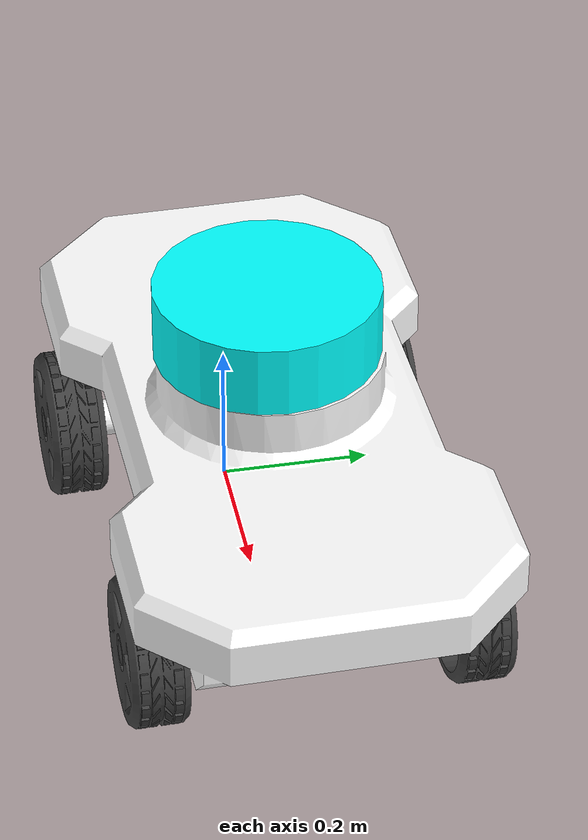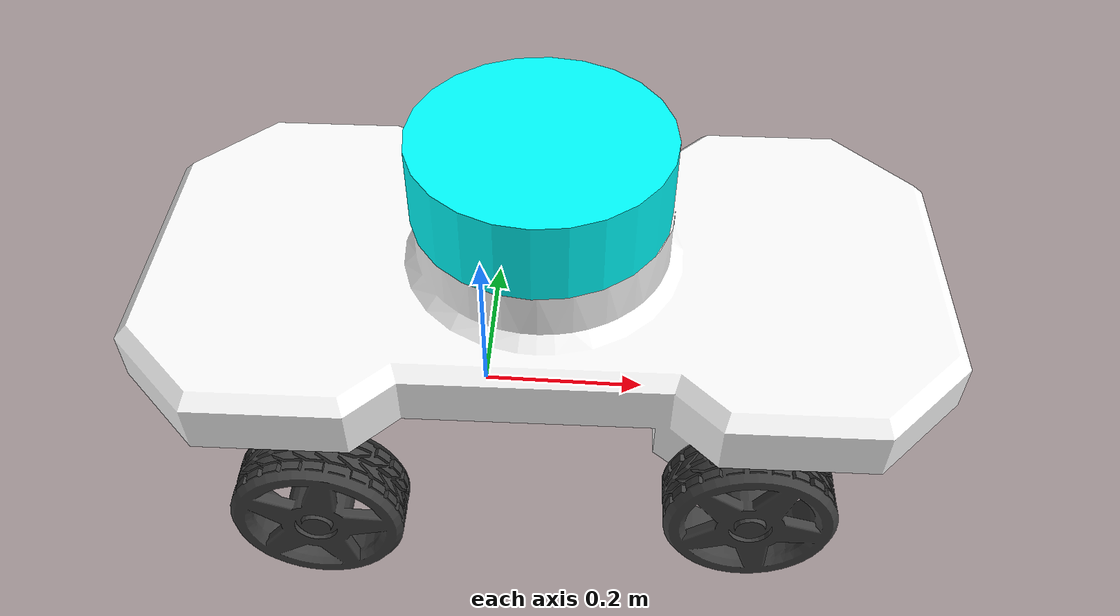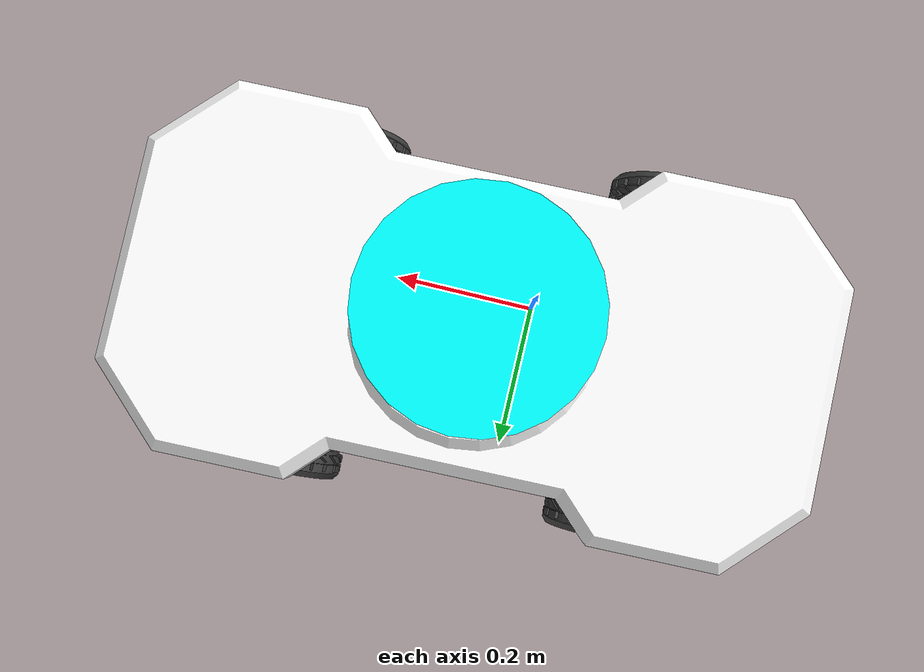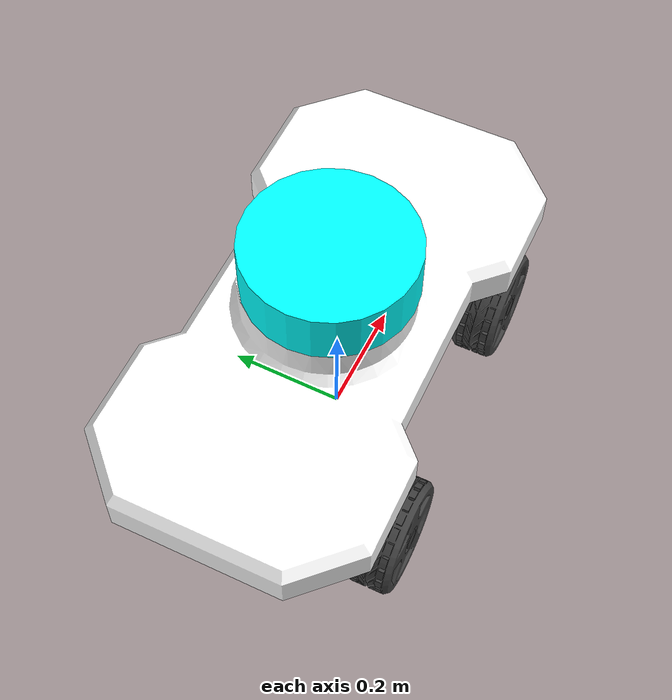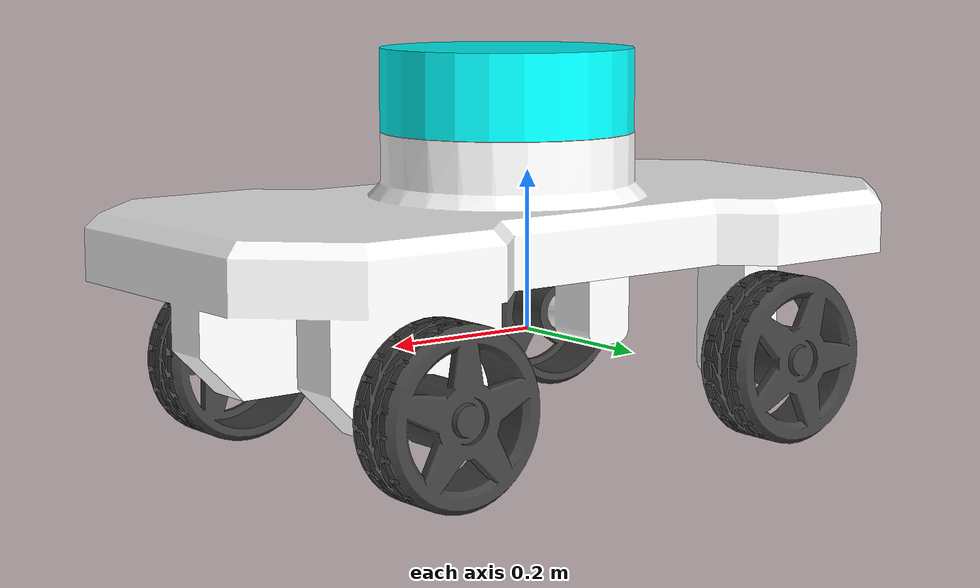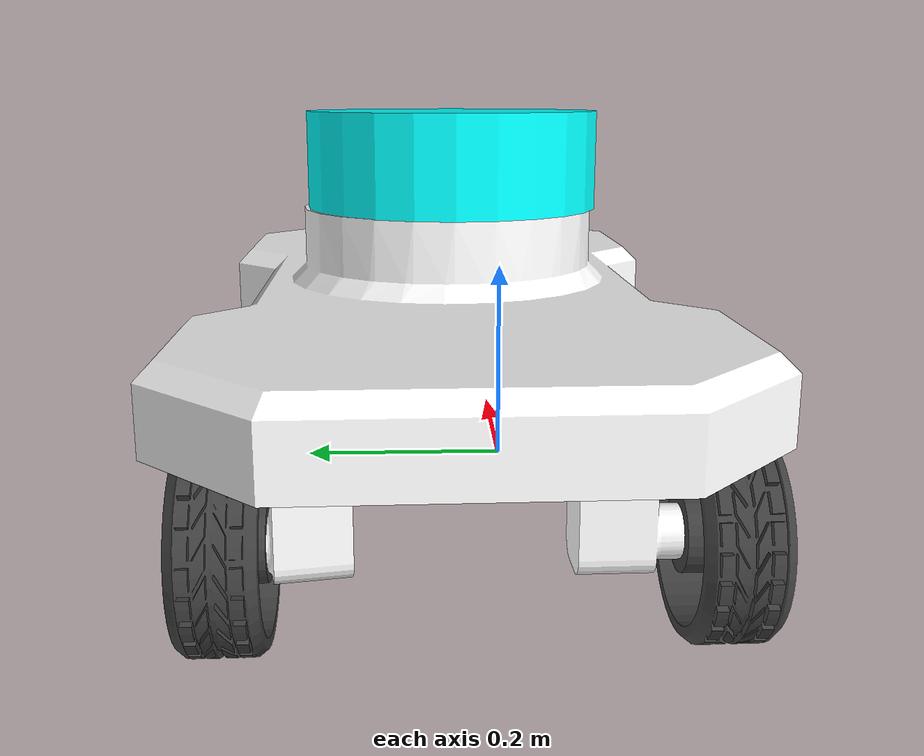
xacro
<?xml version="1.0"?>
<robot
  name="car_assembly" xmlns:xacro="http://ros.org/wiki/xacro">

  <link name="dummy_link"></link>

  <link
    name="base_link">
    <inertial>
      <origin
        xyz="0.098493 0.13954 -0.052416"
        rpy="0 0 0" />
      <mass
        value="43.287" />
      <inertia
        ixx="0.80911"
        ixy="0.12325"
        ixz="0.044762"
        iyy="3.5438"
        iyz="-0.00256"
        izz="2.9632" />
    </inertial>
    <visual>
      <origin
        xyz="0 0 0"
        rpy="0 0 0" />
      <geometry>
        <mesh
          filename="package://car_assembly/meshes/base_link.STL" />
      </geometry>
      <material
        name="">
        <color
          rgba="1 1 1 1" />
      </material>
    </visual>
    <collision>
      <origin
        xyz="0 0 0"
        rpy="0 0 0" />
      <geometry>
        <mesh
          filename="package://car_assembly/meshes/base_link.STL" />
      </geometry>
    </collision>
  </link>
  <joint name="dummy_joint" type="fixed">
    <origin rpy="0 0 0" xyz="0 0 0" />
    <parent link="dummy_link"/>
    <child link="base_link"/>
  </joint>
  <link
    name="back_right_wheel_link">
    <inertial>
      <origin
        xyz="2.191E-11 2.3697E-10 0.047994"
        rpy="0 0 0" />
      <mass
        value="0.92952" />
      <inertia
        ixx="0.0033456"
        ixy="-1.3555E-12"
        ixz="-4.9134E-13"
        iyy="0.0033456"
        iyz="-5.1504E-12"
        izz="0.0056993" />
    </inertial>
    <visual>
      <origin
        xyz="0 0 0"
        rpy="0 0 0" />
      <geometry>
        <mesh
          filename="package://car_assembly/meshes/back_right_wheel_link.STL" />
      </geometry>
      <material
        name="">
        <color
          rgba="0.25098 0.25098 0.25098 1" />
      </material>
    </visual>
    <collision>
      <origin
        xyz="0 0 0"
        rpy="0 0 0" />
      <geometry>
        <mesh
          filename="package://car_assembly/meshes/back_right_wheel_link.STL" />
      </geometry>
    </collision>
  </link>
  <joint
    name="back_right_wheel_joint"
    type="continuous">
    <origin
      xyz="0.32174 0.23067 -0.017794"
      rpy="1.5708 0 -3.1208" />
    <parent
      link="base_link" />
    <child
      link="back_right_wheel_link" />
    <axis
      xyz="0 0 1" />
  </joint>
  <link
    name="back_left_wheel_link">
    <inertial>
      <origin
        xyz="2.207E-11 2.3632E-10 0.048524"
        rpy="0 0 0" />
      <mass
        value="0.92952" />
      <inertia
        ixx="0.0033456"
        ixy="-1.3541E-12"
        ixz="-4.9445E-13"
        iyy="0.0033456"
        iyz="-5.1331E-12"
        izz="0.0056993" />
    </inertial>
    <visual>
      <origin
        xyz="0 0 0"
        rpy="0 0 0" />
      <geometry>
        <mesh
          filename="package://car_assembly/meshes/back_left_wheel_link.STL" />
      </geometry>
      <material
        name="">
        <color
          rgba="0.25098 0.25098 0.25098 1" />
      </material>
    </visual>
    <collision>
      <origin
        xyz="0 0 0"
        rpy="0 0 0" />
      <geometry>
        <mesh
          filename="package://car_assembly/meshes/back_left_wheel_link.STL" />
      </geometry>
    </collision>
  </link>
  <joint
    name="back_left_wheel_joint"
    type="continuous">
    <origin
      xyz="0.32894 -0.11589 -0.017794"
      rpy="-1.5708 1.4356 -3.1208" />
    <parent
      link="base_link" />
    <child
      link="back_left_wheel_link" />
    <axis
      xyz="0 0 1" />
  </joint>
  <link
    name="front_right_steer_link">
    <inertial>
      <origin
        xyz="1.6654E-05 0.03399 0.0088169"
        rpy="0 0 0" />
      <mass
        value="0.99888" />
      <inertia
        ixx="0.0038487"
        ixy="8.602E-07"
        ixz="-9.5628E-07"
        iyy="0.0012132"
        iyz="0.00045607"
        izz="0.0033123" />
    </inertial>
    <visual>
      <origin
        xyz="0 0 0"
        rpy="0 0 0" />
      <geometry>
        <mesh
          filename="package://car_assembly/meshes/front_right_steer_link.STL" />
      </geometry>
      <material
        name="">
        <color
          rgba="1 1 1 1" />
      </material>
    </visual>
    <collision>
      <origin
        xyz="0 0 0"
        rpy="0 0 0" />
      <geometry>
        <mesh
          filename="package://car_assembly/meshes/front_right_steer_link.STL" />
      </geometry>
    </collision>
  </link>
  <joint
    name="front_right_steer_joint"
    type="continuous">
    <origin
      xyz="-0.18538 0.18307 0"
      rpy="1.5708 0 -3.1208" />
    <parent
      link="base_link" />
    <child
      link="front_right_steer_link" />
    <axis
      xyz="0 1 0" />
  </joint>
  <link
    name="front_right_wheel_link">
    <inertial>
      <origin
        xyz="2.207E-11 2.3632E-10 0.049174"
        rpy="0 0 0" />
      <mass
        value="0.92952" />
      <inertia
        ixx="0.0033456"
        ixy="-1.3541E-12"
        ixz="-4.9445E-13"
        iyy="0.0033456"
        iyz="-5.1331E-12"
        izz="0.0056993" />
    </inertial>
    <visual>
      <origin
        xyz="0 0 0"
        rpy="0 0 0" />
      <geometry>
        <mesh
          filename="package://car_assembly/meshes/front_right_wheel_link.STL" />
      </geometry>
      <material
        name="">
        <color
          rgba="0.25098 0.25098 0.25098 1" />
      </material>
    </visual>
    <collision>
      <origin
        xyz="0 0 0"
        rpy="0 0 0" />
      <geometry>
        <mesh
          filename="package://car_assembly/meshes/front_right_wheel_link.STL" />
      </geometry>
    </collision>
  </link>
  <joint
    name="front_right_wheel_joint"
    type="continuous">
    <origin
      xyz="0.00012521 -0.017794 0.035876"
      rpy="0 0 -0.34569" />
    <parent
      link="front_right_steer_link" />
    <child
      link="front_right_wheel_link" />
    <axis
      xyz="0 0 1" />
  </joint>
  <link
    name="front_left_steer_link">
    <inertial>
      <origin
        xyz="1.6654E-05 0.03399 0.0088169"
        rpy="0 0 0" />
      <mass
        value="0.99888" />
      <inertia
        ixx="0.0038487"
        ixy="8.602E-07"
        ixz="-9.5628E-07"
        iyy="0.0012132"
        iyz="0.00045607"
        izz="0.0033123" />
    </inertial>
    <visual>
      <origin
        xyz="0 0 0"
        rpy="0 0 0" />
      <geometry>
        <mesh
          filename="package://car_assembly/meshes/front_left_steer_link.STL" />
      </geometry>
      <material
        name="">
        <color
          rgba="1 1 1 1" />
      </material>
    </visual>
    <collision>
      <origin
        xyz="0 0 0"
        rpy="0 0 0" />
      <geometry>
        <mesh
          filename="package://car_assembly/meshes/front_left_steer_link.STL" />
      </geometry>
    </collision>
  </link>
  <joint
    name="front_left_steer_joint"
    type="continuous">
    <origin
      xyz="-0.17971 -0.089917 0"
      rpy="1.5708 0 0.020768" />
    <parent
      link="base_link" />
    <child
      link="front_left_steer_link" />
    <axis
      xyz="0 1 0" />
  </joint>
  <link
    name="front_left_wheel_link">
    <inertial>
      <origin
        xyz="2.207E-11 2.3632E-10 0.049539"
        rpy="0 0 0" />
      <mass
        value="0.92952" />
      <inertia
        ixx="0.0033456"
        ixy="-1.3541E-12"
        ixz="-4.9445E-13"
        iyy="0.0033456"
        iyz="-5.1331E-12"
        izz="0.0056993" />
    </inertial>
    <visual>
      <origin
        xyz="0 0 0"
        rpy="0 0 0" />
      <geometry>
        <mesh
          filename="package://car_assembly/meshes/front_left_wheel_link.STL" />
      </geometry>
      <material
        name="">
        <color
          rgba="0.25098 0.25098 0.25098 1" />
      </material>
    </visual>
    <collision>
      <origin
        xyz="0 0 0"
        rpy="0 0 0" />
      <geometry>
        <mesh
          filename="package://car_assembly/meshes/front_left_wheel_link.STL" />
      </geometry>
    </collision>
  </link>
  <joint
    name="front_left_wheel_joint"
    type="continuous">
    <origin
      xyz="0.00012521 -0.017794 0.035511"
      rpy="0 0 1.0465" />
    <parent
      link="front_left_steer_link" />
    <child
      link="front_left_wheel_link" />
    <axis
      xyz="0 0 1" />
  </joint>

  <!-- Lidar definition -->
  <link name="lidar_link">
   <inertial>
     <origin xyz="0 0 0" rpy="0 0 0"/>
     <mass value="1"/>
     <inertia ixx="1"  ixy="0"  ixz="0" iyy="1" iyz="0" izz="1" />
   </inertial>

   <visual>
     <origin xyz="0 0 0" rpy="0 0 0" />
     <geometry>
       <cylinder radius="0.1524" length="0.1"/>
     </geometry>
     <material name="Cyan">
       <color rgba="0 1.0 1.0 1.0"/>
     </material>
   </visual>

   <collision>
     <origin xyz="0 0 0" rpy="0 0 0"/>
     <geometry>
       <cylinder radius="0.1524" length="0.1"/>
     </geometry>
   </collision>
 </link>

 <joint
    name="lidar_joint"
    type="fixed">
    <origin
      xyz="0.0686 0.04735 0.3048"
      rpy="0 0 0" />
    <parent
      link="base_link" />
    <child
      link="lidar_link" />
    <axis
      xyz="0 0 1" />
  </joint>

  <gazebo reference="lidar_link">
    <sensor name="lidar" type="ray">
      <pose>0.0 0.0 0.0 0 0 0</pose>
      <always_on>true</always_on>
      <visualize>false</visualize>
      <update_rate>5</update_rate>
      <ray>
        <scan>
          <horizontal>
            <samples>360</samples>
            <resolution>1.00000</resolution>
            <min_angle>0.000000</min_angle>
            <max_angle>6.280000</max_angle>
          </horizontal>
        </scan>
        <range>
          <min>0.16</min>
          <max>3.5</max>
          <resolution>0.015000</resolution>
        </range>
        <noise>
          <type>gaussian</type>
          <mean>0.0</mean>
          <stddev>0.01</stddev>
        </noise>
      </ray>
      <plugin name="scan" filename="libgazebo_ros_ray_sensor.so">
        <ros>
          <remapping>~/out:=scan</remapping>
        </ros>
        <output_type>sensor_msgs/LaserScan</output_type>
        <frame_name>lidar_link</frame_name>
      </plugin>
    </sensor>
  </gazebo>

  <!-- IMU -->
  <gazebo reference="base_link">
    <gravity>true</gravity>
    <sensor name="imu_sensor" type="imu">
      <always_on>true</always_on>
      <update_rate>100</update_rate>
      <visualize>true</visualize>
      <topic>__default_topic__</topic>
      <plugin filename="libgazebo_ros_imu_sensor.so" name="imu_plugin">
        <topicName>imu</topicName>
        <bodyName>base_link</bodyName>
        <updateRateHZ>10.0</updateRateHZ>
        <gaussianNoise>0.0</gaussianNoise>
        <xyzOffset>0 0 0</xyzOffset>
        <rpyOffset>0 0 0</rpyOffset>
        <frameName>base_link</frameName>
        <initialOrientationAsReference>false</initialOrientationAsReference>
      </plugin>
      <pose>0 0 0 0 0 0</pose>
    </sensor>
  </gazebo>

  <!-- ROS Gazebo controls -->
  <ros2_control name="GazeboSystem" type="system">
    <hardware>
        <plugin>gazebo_ros2_control/GazeboSystem</plugin>
    </hardware>

    <!-- Velocity controllers -->

    <!-- Front Wheels -->
    <joint name="front_right_wheel_joint">
        <command_interface name="velocity">
            <param name="min">-1000.0</param>
            <param name="max">1000.0</param>
        </command_interface>
        <state_interface name="position"/>
        <state_interface name="velocity"/>
    </joint>

    <joint name="front_left_wheel_joint">
        <command_interface name="velocity">
            <param name="min">-1000.0</param>
            <param name="max">1000.0</param>
        </command_interface>
        <state_interface name="position"/>
        <state_interface name="velocity"/>
    </joint>

    <!-- Back Wheels -->
    <joint name="back_right_wheel_joint">
        <command_interface name="velocity">
            <param name="min">-1000.0</param>
            <param name="max">1000.0</param>
        </command_interface>
        <state_interface name="position"/>
        <state_interface name="velocity"/>
    </joint>

    <joint name="back_left_wheel_joint">
        <command_interface name="velocity">
            <param name="min">-1000.0</param>
            <param name="max">1000.0</param>
        </command_interface>
        <state_interface name="position"/>
        <state_interface name="velocity"/>
    </joint>

    <!-- Position Controllers -->
    <joint name="front_left_steer_joint">
        <command_interface name="position">
            <param name="min">-0.7854</param>
            <param name="max">0.7854</param>
        </command_interface>
        <state_interface name="position"/>
        <state_interface name="velocity"/>
    </joint>

    <joint name="front_right_steer_joint">
        <command_interface name="position">
            <param name="min">-0.7854</param>
            <param name="max">0.7854</param>
        </command_interface>
        <state_interface name="position"/>
        <state_interface name="velocity"/>
    </joint>

  </ros2_control>
  <gazebo>
      <plugin filename="libgazebo_ros2_control.so" name="gazebo_ros2_control">
          <parameters>$(find car_assembly)/config/control.yaml</parameters>
      </plugin>
    </gazebo>
</robot>
